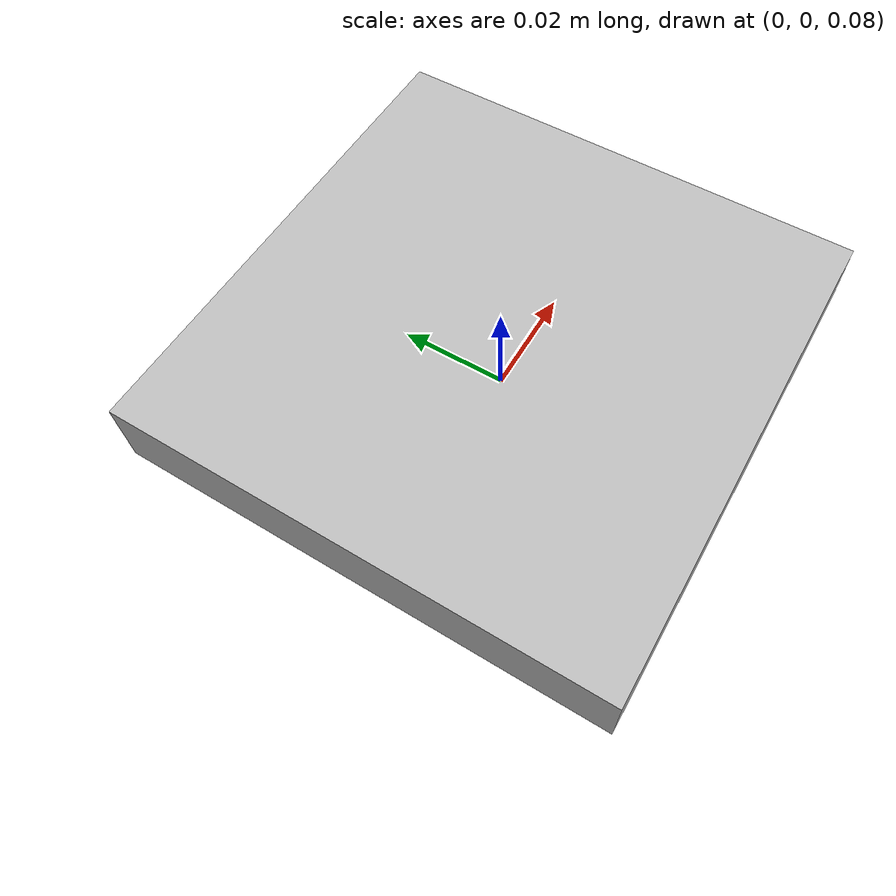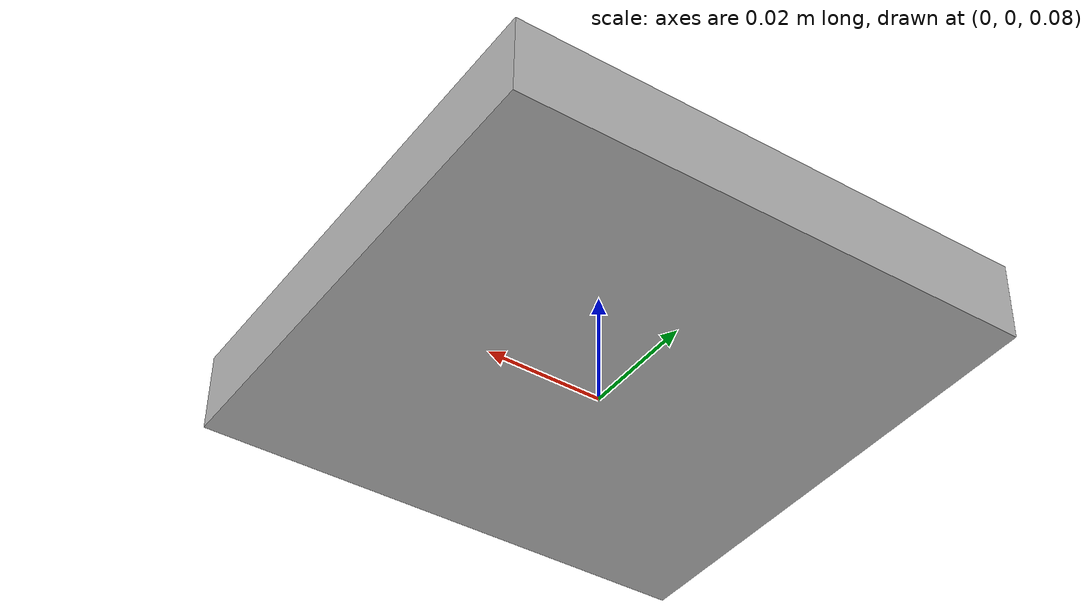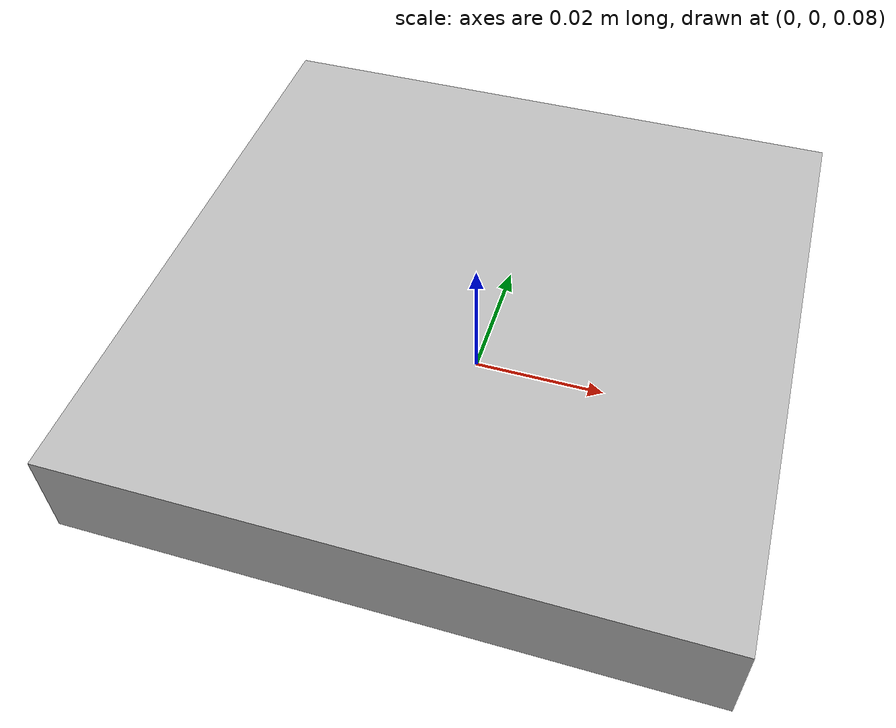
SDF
<?xml version="1.0" ?>
<sdf version="1.5">
  <model name="ar_tag_0">
    <pose>0 0 0.09  0 0 0</pose>
    <static>false</static>
    <link name="link">

      <gravity>0</gravity>

      <inertial>
        <mass>0</mass>
        <inertia>
          <ixx>0.0741666666667</ixx>
          <ixy>0</ixy>
          <ixz>0</ixz>
          <iyy>0.0585416666667</iyy>
          <iyz>0</iyz>
          <izz>0.0260416666667</izz>
        </inertia>
      </inertial>

      <collision name="collision">
        <geometry>
          <box>
              <size>0.20 0.20 0.20</size>
          </box>
        </geometry>
	<surface>
          <contact>
            <ode>
              <max_vel>0.1</max_vel>
              <min_depth>0.001</min_depth>
            </ode>
          </contact>
        </surface>
      </collision>
      <visual name="visual">
        <geometry>
          <mesh>
            <uri>model://ar_tag_0/meshes/tag_0.dae</uri>
          </mesh>
	</geometry>
      </visual>
    </link>
  </model>
</sdf>
